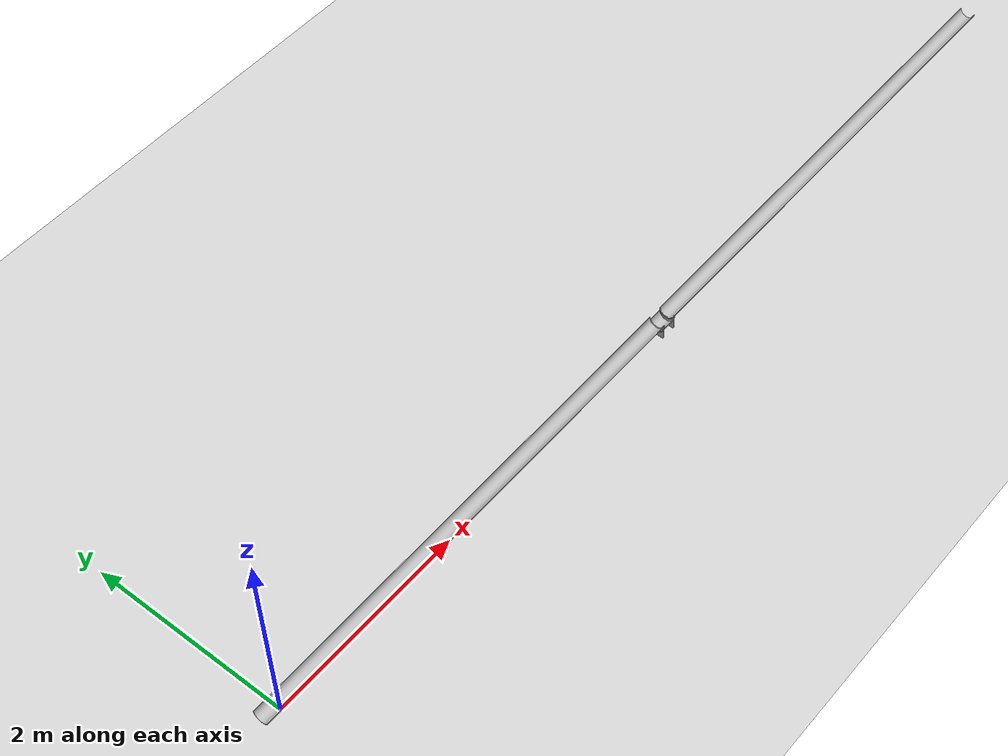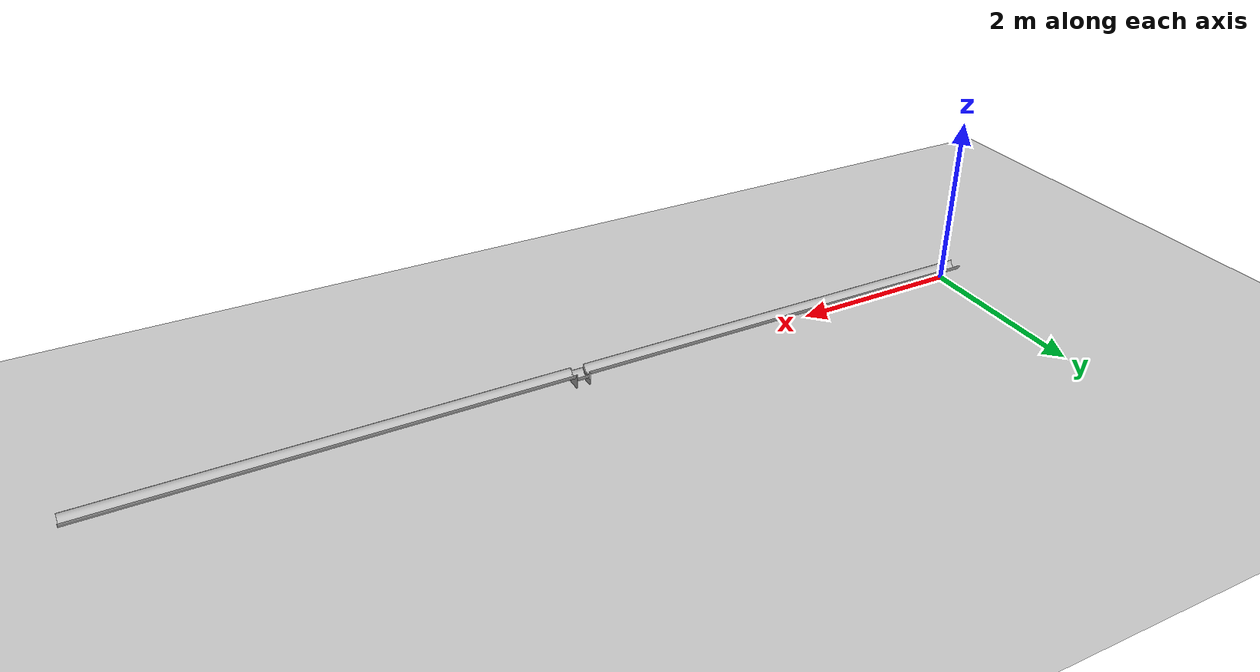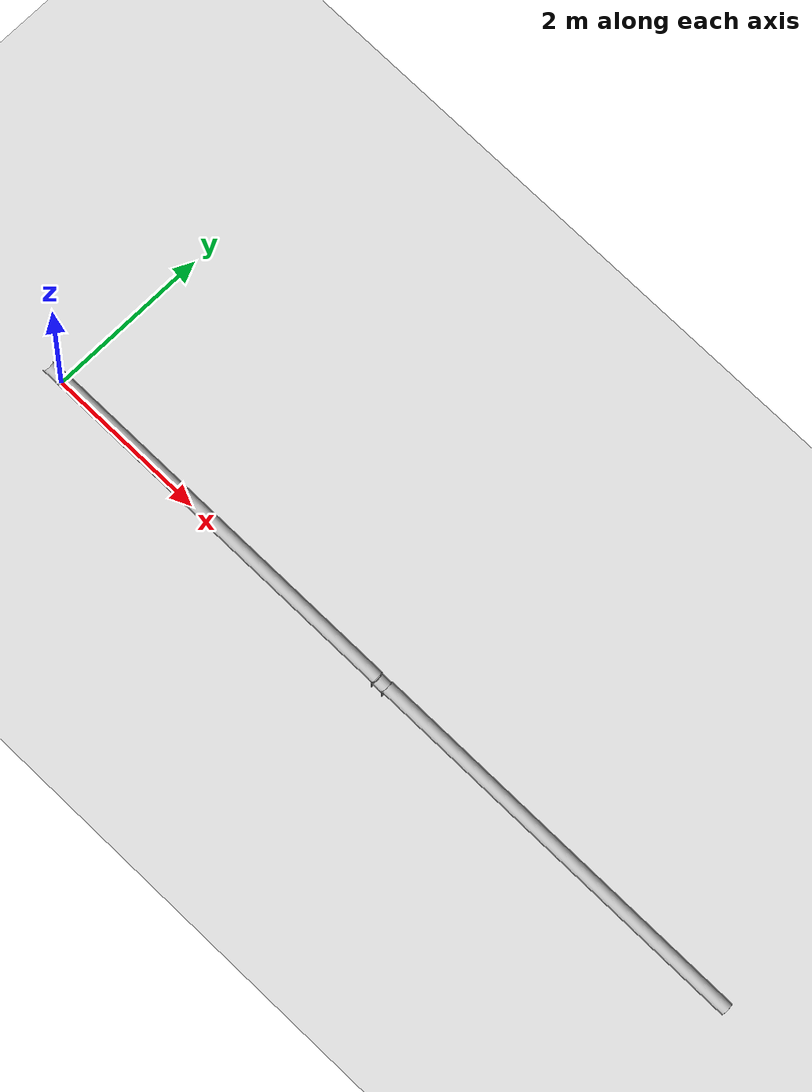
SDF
<sdf version="1.7">
  <world name="default">
      <!-- Add the Sun light to the world -->
    <light name='sun' type='directional'>
      <cast_shadows>1</cast_shadows>
      <pose>0 0 10 0 -0 0</pose>
      <diffuse>0.8 0.8 0.8 1</diffuse>
      <specular>0.2 0.2 0.2 1</specular>
      <attenuation>
        <range>1000</range>
        <constant>0.9</constant>
        <linear>0.01</linear>
        <quadratic>0.001</quadratic>
      </attenuation>
      <direction>-0.5 0.1 -0.9</direction>
      <spot>
        <inner_angle>0</inner_angle>
        <outer_angle>0</outer_angle>
        <falloff>0</falloff>
      </spot>
    </light>

    <!-- World settings (optional) -->
    <gravity>0 0 -9.81</gravity> <!-- Default gravity -->
    <scene>
      <ambient_light>0.7 0.7 0.7 1.0</ambient_light>
    </scene>

    <!-- Add the hollow pipe model 1 -->
    <model name="hollow_pipe_1">
      <static>true</static>  <!-- Pipe is static, it's not going to move -->
      <pose>-0.2 -0.08 0.08 1.5708 0 1.5708</pose>
      <link name="hollow_pipe_link">
        <visual name="hollow_pipe_visual">
          <geometry>
            <mesh>
              <!-- Path to the hollow pipe mesh -->
              <uri>model://pipe_swarm/models/hollow_pipe/meshes/half_hollow_pipe.stl</uri>
              <scale>0.001 0.001 0.001</scale>  <!-- Scale if needed -->
            </mesh>
          </geometry>
        </visual>

        <collision name="hollow_pipe_1_collision">
          <geometry>
            <mesh>
              <!-- Path to the hollow pipe mesh for collision -->
              <uri>model://pipe_swarm/models/hollow_pipe/meshes/half_hollow_pipe.stl</uri>
              <scale>0.001 0.001 0.001</scale>  <!-- Scale for collision geometry -->
            </mesh>
          </geometry>
        </collision>
      </link>
    </model>

    <!-- Add the half hollow pipe model -->
    <model name="half_hollow_pipe">
      <static>true</static>  <!-- Pipe is static, it's not going to move -->
      <pose>4.8 -0.08 0.04 1.5708 0 1.5708</pose>
      <link name="hollow_pipe_link">
        <visual name="hollow_pipe_visual">
          <geometry>
            <mesh>
              <!-- Path to the hollow pipe mesh -->
              <uri>model://pipe_swarm/models/hollow_pipe/meshes/half_hollow_pipe_short.stl</uri>
              <scale>0.001 0.001 0.001</scale>  <!-- Scale if needed -->
            </mesh>
          </geometry>
        </visual>

        <collision name="half_hollow_pipe_collision">
          <geometry>
            <mesh>
              <!-- Path to the hollow pipe mesh for collision -->
              <uri>model://pipe_swarm/models/hollow_pipe/meshes/half_hollow_pipe_short.stl</uri>
              <scale>0.001 0.001 0.001</scale>  <!-- Scale for collision geometry -->
            </mesh>
          </geometry>
          <surface>
            <friction>
              <ode>
                <mu>1.5</mu>   <!-- Increased friction -->
                <mu2>1.5</mu2>  <!-- Increased friction -->
                <slip1>0.0</slip1>
                <slip2>0.0</slip2>
              </ode>
            </friction>
            <contact>
              <ode>
                <kp>1000000.0</kp> <!-- Standard contact stiffness -->
                <kd>100.0</kd>     <!-- Standard contact damping -->
                <max_vel>1.0</max_vel>
                <min_depth>0.001</min_depth>
              </ode>
            </contact>
          </surface>
        </collision>
      </link>
    </model>

    <!-- Add the pipe end model 1 -->
    <model name="pipe_end_1">
      <static>true</static>  <!-- Pipe is static, it's not going to move -->
      <pose>4.8 -0.08 -0.16 1.5708 0 1.5708</pose>
      <link name="hollow_pipe_link">
        <visual name="hollow_pipe_visual">
          <geometry>
            <mesh>
              <!-- Path to the hollow pipe mesh -->
              <uri>model://pipe_swarm/models/hollow_pipe/meshes/pipe_end.stl</uri>
              <scale>0.001 0.001 0.001</scale>  <!-- Scale if needed -->
            </mesh>
          </geometry>
        </visual>

        <collision name="pipe_end_collision">
          <geometry>
            <mesh>
              <!-- Path to the hollow pipe mesh for collision -->
              <uri>model://pipe_swarm/models/hollow_pipe/meshes/pipe_end.stl</uri>
              <scale>0.001 0.001 0.001</scale>  <!-- Scale for collision geometry -->
            </mesh>
          </geometry>
          <surface>
            <friction>
              <ode>
                <mu>1.5</mu>   <!-- Increased friction -->
                <mu2>1.5</mu2>  <!-- Increased friction -->
                <slip1>0.0</slip1>
                <slip2>0.0</slip2>
              </ode>
            </friction>
            <contact>
              <ode>
                <kp>1000000.0</kp> <!-- Standard contact stiffness -->
                <kd>100.0</kd>     <!-- Standard contact damping -->
                <max_vel>1.0</max_vel>
                <min_depth>0.001</min_depth>
              </ode>
            </contact>
          </surface>
        </collision>
      </link>
    </model>

    <!-- Add the pipe end model 2-->
    <model name="pipe_end_2">
      <static>true</static>  <!-- Pipe is static, it's not going to move -->
      <pose>4.949 -0.08 -0.16 1.5708 0 1.5708</pose>
      <link name="hollow_pipe_link">
        <visual name="hollow_pipe_visual">
          <geometry>
            <mesh>
              <!-- Path to the hollow pipe mesh -->
              <uri>model://pipe_swarm/models/hollow_pipe/meshes/pipe_end.stl</uri>
              <scale>0.001 0.001 0.001</scale>  <!-- Scale if needed -->
            </mesh>
          </geometry>
        </visual>

        <collision name="pipe_end_collision">
          <geometry>
            <mesh>
              <!-- Path to the hollow pipe mesh for collision -->
              <uri>model://pipe_swarm/models/hollow_pipe/meshes/pipe_end.stl</uri>
              <scale>0.001 0.001 0.001</scale>  <!-- Scale for collision geometry -->
            </mesh>
          </geometry>
          <surface>
            <friction>
              <ode>
                <mu>1.5</mu>   <!-- Increased friction -->
                <mu2>1.5</mu2>  <!-- Increased friction -->
                <slip1>0.0</slip1>
                <slip2>0.0</slip2>
              </ode>
            </friction>
            <contact>
              <ode>
                <kp>1000000.0</kp> <!-- Standard contact stiffness -->
                <kd>100.0</kd>     <!-- Standard contact damping -->
                <max_vel>1.0</max_vel>
                <min_depth>0.001</min_depth>
              </ode>
            </contact>
          </surface>
        </collision>
      </link>
    </model>

    <!-- Add the hollow pipe model 2-->
    <model name="hollow_pipe_2">
      <static>true</static>  <!-- Pipe is static, it's not going to move -->
      <pose>4.949 -0.08 0.08 1.5708 0 1.5708</pose>
      <link name="hollow_pipe_link">
        <visual name="hollow_pipe_visual">
          <geometry>
            <mesh>
              <!-- Path to the hollow pipe mesh -->
              <uri>model://pipe_swarm/models/hollow_pipe/meshes/half_hollow_pipe.stl</uri>
              <scale>0.001 0.001 0.001</scale>  <!-- Scale if needed -->
            </mesh>
          </geometry>
        </visual>

        <collision name="hollow_pipe_2_collision">
          <geometry>
            <mesh>
              <!-- Path to the hollow pipe mesh for collision -->
              <uri>model://pipe_swarm/models/hollow_pipe/meshes/half_hollow_pipe.stl</uri>
              <scale>0.001 0.001 0.001</scale>  <!-- Scale for collision geometry -->
            </mesh>
          </geometry>
        </collision>
      </link>
    </model>

    <!-- Ground plane (optional) -->
    <model name="ground_plane">
      <static>true</static>
      <link name="ground_plane_link">
        <visual name="ground_plane_visual">
          <geometry>
            <plane>
              <normal>0 0 1</normal>
              <size>10 10</size>
            </plane>
          </geometry>
        </visual>
        <collision name="ground_plane_collision">
          <geometry>
            <plane>
              <normal>0 0 1</normal>
              <size>10 10</size>
            </plane>
          </geometry>
        </collision>
      </link>
    </model>

  </world>
</sdf>
